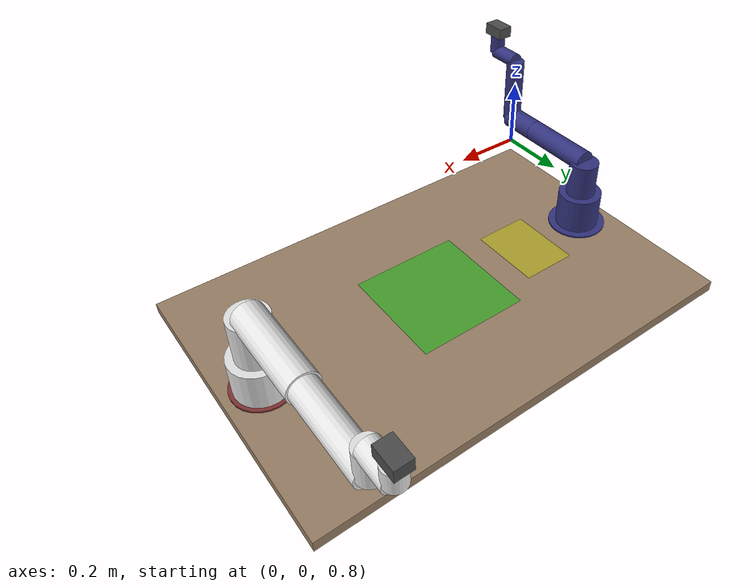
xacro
<?xml version="1.0"?>
<robot xmlns:xacro="http://www.ros.org/wiki/xacro" name="lego_mcp_cell">

  <!-- Arguments -->
  <xacro:arg name="use_sim" default="true"/>
  <xacro:arg name="use_fake_hardware" default="false"/>
  <xacro:arg name="ned2_prefix" default="ned2_"/>
  <xacro:arg name="xarm_prefix" default="xarm_"/>

  <!-- World link -->
  <link name="world"/>

  <!-- Workcell Static Geometry -->

  <!-- Worktable -->
  <link name="worktable">
    <visual>
      <origin xyz="0 0 -0.015" rpy="0 0 0"/>
      <geometry>
        <box size="1.2 0.8 0.03"/>
      </geometry>
      <material name="wood">
        <color rgba="0.6 0.5 0.4 1"/>
      </material>
    </visual>
    <collision>
      <origin xyz="0 0 -0.015" rpy="0 0 0"/>
      <geometry>
        <box size="1.2 0.8 0.03"/>
      </geometry>
    </collision>
  </link>

  <joint name="world_to_worktable" type="fixed">
    <parent link="world"/>
    <child link="worktable"/>
    <origin xyz="0.6 0.4 0.765" rpy="0 0 0"/>
  </joint>

  <!-- Assembly Zone Marker -->
  <link name="assembly_zone">
    <visual>
      <geometry>
        <box size="0.3 0.3 0.002"/>
      </geometry>
      <material name="green_transparent">
        <color rgba="0 0.8 0 0.5"/>
      </material>
    </visual>
  </link>

  <joint name="worktable_to_assembly" type="fixed">
    <parent link="worktable"/>
    <child link="assembly_zone"/>
    <origin xyz="0 0 0.001" rpy="0 0 0"/>
  </joint>

  <!-- Brick Pickup Zone -->
  <link name="pickup_zone">
    <visual>
      <geometry>
        <box size="0.15 0.2 0.002"/>
      </geometry>
      <material name="yellow_transparent">
        <color rgba="0.8 0.8 0 0.5"/>
      </material>
    </visual>
  </link>

  <joint name="worktable_to_pickup" type="fixed">
    <parent link="worktable"/>
    <child link="pickup_zone"/>
    <origin xyz="-0.3 0 0.001" rpy="0 0 0"/>
  </joint>

  <!-- Niryo Ned2 Robot         -->

  <!-- Ned2 base mounting plate -->
  <link name="$(arg ned2_prefix)base_mount">
    <visual>
      <geometry>
        <cylinder radius="0.08" length="0.02"/>
      </geometry>
      <material name="ned2_blue">
        <color rgba="0.2 0.2 0.5 1"/>
      </material>
    </visual>
    <collision>
      <geometry>
        <cylinder radius="0.08" length="0.02"/>
      </geometry>
    </collision>
  </link>

  <joint name="world_to_ned2_mount" type="fixed">
    <parent link="world"/>
    <child link="$(arg ned2_prefix)base_mount"/>
    <origin xyz="0.1 0.4 0.76" rpy="0 0 0"/>
  </joint>

  <!-- Ned2 Base Link (simplified for standalone operation) -->
  <link name="$(arg ned2_prefix)base_link">
    <visual>
      <origin xyz="0 0 0.05" rpy="0 0 0"/>
      <geometry>
        <cylinder radius="0.06" length="0.1"/>
      </geometry>
      <material name="ned2_blue"/>
    </visual>
    <collision>
      <origin xyz="0 0 0.05" rpy="0 0 0"/>
      <geometry>
        <cylinder radius="0.06" length="0.1"/>
      </geometry>
    </collision>
    <inertial>
      <mass value="1.0"/>
      <inertia ixx="0.01" ixy="0" ixz="0" iyy="0.01" iyz="0" izz="0.01"/>
    </inertial>
  </link>

  <joint name="ned2_mount_to_base" type="fixed">
    <parent link="$(arg ned2_prefix)base_mount"/>
    <child link="$(arg ned2_prefix)base_link"/>
    <origin xyz="0 0 0.01" rpy="0 0 0"/>
  </joint>

  <!-- Ned2 simplified arm links -->
  <xacro:macro name="ned2_link" params="name length radius color">
    <link name="${name}">
      <visual>
        <origin xyz="0 0 ${length/2}" rpy="0 0 0"/>
        <geometry>
          <cylinder radius="${radius}" length="${length}"/>
        </geometry>
        <material name="${color}">
          <color rgba="0.2 0.2 0.5 1"/>
        </material>
      </visual>
      <collision>
        <origin xyz="0 0 ${length/2}" rpy="0 0 0"/>
        <geometry>
          <cylinder radius="${radius}" length="${length}"/>
        </geometry>
      </collision>
      <inertial>
        <mass value="0.5"/>
        <inertia ixx="0.005" ixy="0" ixz="0" iyy="0.005" iyz="0" izz="0.002"/>
      </inertial>
    </link>
  </xacro:macro>

  <xacro:ned2_link name="$(arg ned2_prefix)shoulder_link" length="0.10" radius="0.04" color="ned2_blue"/>
  <xacro:ned2_link name="$(arg ned2_prefix)arm_link" length="0.20" radius="0.03" color="ned2_blue"/>
  <xacro:ned2_link name="$(arg ned2_prefix)elbow_link" length="0.10" radius="0.03" color="ned2_blue"/>
  <xacro:ned2_link name="$(arg ned2_prefix)forearm_link" length="0.18" radius="0.025" color="ned2_blue"/>
  <xacro:ned2_link name="$(arg ned2_prefix)wrist_link" length="0.08" radius="0.02" color="ned2_blue"/>
  <xacro:ned2_link name="$(arg ned2_prefix)hand_link" length="0.05" radius="0.02" color="ned2_blue"/>

  <joint name="$(arg ned2_prefix)joint_1" type="revolute">
    <parent link="$(arg ned2_prefix)base_link"/>
    <child link="$(arg ned2_prefix)shoulder_link"/>
    <origin xyz="0 0 0.1" rpy="0 0 0"/>
    <axis xyz="0 0 1"/>
    <limit lower="-2.9" upper="2.9" effort="10" velocity="1.0"/>
  </joint>

  <joint name="$(arg ned2_prefix)joint_2" type="revolute">
    <parent link="$(arg ned2_prefix)shoulder_link"/>
    <child link="$(arg ned2_prefix)arm_link"/>
    <origin xyz="0 0 0.1" rpy="1.5708 0 0"/>
    <axis xyz="0 0 1"/>
    <limit lower="-1.8" upper="0.6" effort="10" velocity="1.0"/>
  </joint>

  <joint name="$(arg ned2_prefix)joint_3" type="revolute">
    <parent link="$(arg ned2_prefix)arm_link"/>
    <child link="$(arg ned2_prefix)elbow_link"/>
    <origin xyz="0 0 0.2" rpy="0 0 0"/>
    <axis xyz="0 0 1"/>
    <limit lower="-1.3" upper="1.6" effort="10" velocity="1.0"/>
  </joint>

  <joint name="$(arg ned2_prefix)joint_4" type="revolute">
    <parent link="$(arg ned2_prefix)elbow_link"/>
    <child link="$(arg ned2_prefix)forearm_link"/>
    <origin xyz="0 0 0.1" rpy="-1.5708 0 0"/>
    <axis xyz="0 0 1"/>
    <limit lower="-2.1" upper="2.1" effort="5" velocity="1.0"/>
  </joint>

  <joint name="$(arg ned2_prefix)joint_5" type="revolute">
    <parent link="$(arg ned2_prefix)forearm_link"/>
    <child link="$(arg ned2_prefix)wrist_link"/>
    <origin xyz="0 0 0.18" rpy="1.5708 0 0"/>
    <axis xyz="0 0 1"/>
    <limit lower="-1.9" upper="1.9" effort="5" velocity="1.0"/>
  </joint>

  <joint name="$(arg ned2_prefix)joint_6" type="revolute">
    <parent link="$(arg ned2_prefix)wrist_link"/>
    <child link="$(arg ned2_prefix)hand_link"/>
    <origin xyz="0 0 0.08" rpy="-1.5708 0 0"/>
    <axis xyz="0 0 1"/>
    <limit lower="-2.5" upper="2.5" effort="5" velocity="1.5"/>
  </joint>

  <!-- Ned2 Tool (end effector frame) -->
  <link name="$(arg ned2_prefix)tool0"/>
  <joint name="$(arg ned2_prefix)hand_to_tool0" type="fixed">
    <parent link="$(arg ned2_prefix)hand_link"/>
    <child link="$(arg ned2_prefix)tool0"/>
    <origin xyz="0 0 0.05" rpy="0 0 0"/>
  </joint>

  <!-- Ned2 Gripper (LEGO gripper) -->
  <link name="$(arg ned2_prefix)gripper">
    <visual>
      <geometry>
        <box size="0.04 0.06 0.03"/>
      </geometry>
      <material name="gripper_gray">
        <color rgba="0.3 0.3 0.3 1"/>
      </material>
    </visual>
    <collision>
      <geometry>
        <box size="0.04 0.06 0.03"/>
      </geometry>
    </collision>
  </link>

  <joint name="$(arg ned2_prefix)tool0_to_gripper" type="fixed">
    <parent link="$(arg ned2_prefix)tool0"/>
    <child link="$(arg ned2_prefix)gripper"/>
    <origin xyz="0 0 0.015" rpy="0 0 0"/>
  </joint>

  <!-- xArm 6 Lite Robot        -->

  <!-- xArm base mounting plate -->
  <link name="$(arg xarm_prefix)base_mount">
    <visual>
      <geometry>
        <cylinder radius="0.08" length="0.02"/>
      </geometry>
      <material name="xarm_red">
        <color rgba="0.5 0.2 0.2 1"/>
      </material>
    </visual>
    <collision>
      <geometry>
        <cylinder radius="0.08" length="0.02"/>
      </geometry>
    </collision>
  </link>

  <joint name="world_to_xarm_mount" type="fixed">
    <parent link="world"/>
    <child link="$(arg xarm_prefix)base_mount"/>
    <origin xyz="1.1 0.4 0.76" rpy="0 0 3.14159"/>
  </joint>

  <!-- xArm Base Link -->
  <link name="$(arg xarm_prefix)base_link">
    <visual>
      <origin xyz="0 0 0.05" rpy="0 0 0"/>
      <geometry>
        <cylinder radius="0.07" length="0.1"/>
      </geometry>
      <material name="xarm_white">
        <color rgba="0.9 0.9 0.9 1"/>
      </material>
    </visual>
    <collision>
      <origin xyz="0 0 0.05" rpy="0 0 0"/>
      <geometry>
        <cylinder radius="0.07" length="0.1"/>
      </geometry>
    </collision>
    <inertial>
      <mass value="1.0"/>
      <inertia ixx="0.01" ixy="0" ixz="0" iyy="0.01" iyz="0" izz="0.01"/>
    </inertial>
  </link>

  <joint name="xarm_mount_to_base" type="fixed">
    <parent link="$(arg xarm_prefix)base_mount"/>
    <child link="$(arg xarm_prefix)base_link"/>
    <origin xyz="0 0 0.01" rpy="0 0 0"/>
  </joint>

  <!-- xArm simplified links -->
  <xacro:macro name="xarm_link" params="name length radius">
    <link name="${name}">
      <visual>
        <origin xyz="0 0 ${length/2}" rpy="0 0 0"/>
        <geometry>
          <cylinder radius="${radius}" length="${length}"/>
        </geometry>
        <material name="xarm_white"/>
      </visual>
      <collision>
        <origin xyz="0 0 ${length/2}" rpy="0 0 0"/>
        <geometry>
          <cylinder radius="${radius}" length="${length}"/>
        </geometry>
      </collision>
      <inertial>
        <mass value="0.5"/>
        <inertia ixx="0.005" ixy="0" ixz="0" iyy="0.005" iyz="0" izz="0.002"/>
      </inertial>
    </link>
  </xacro:macro>

  <xacro:xarm_link name="$(arg xarm_prefix)link1" length="0.12" radius="0.05"/>
  <xacro:xarm_link name="$(arg xarm_prefix)link2" length="0.24" radius="0.04"/>
  <xacro:xarm_link name="$(arg xarm_prefix)link3" length="0.23" radius="0.035"/>
  <xacro:xarm_link name="$(arg xarm_prefix)link4" length="0.08" radius="0.03"/>
  <xacro:xarm_link name="$(arg xarm_prefix)link5" length="0.08" radius="0.028"/>
  <xacro:xarm_link name="$(arg xarm_prefix)link6" length="0.05" radius="0.025"/>

  <joint name="$(arg xarm_prefix)joint1" type="revolute">
    <parent link="$(arg xarm_prefix)base_link"/>
    <child link="$(arg xarm_prefix)link1"/>
    <origin xyz="0 0 0.1" rpy="0 0 0"/>
    <axis xyz="0 0 1"/>
    <limit lower="-6.28" upper="6.28" effort="20" velocity="1.5"/>
  </joint>

  <joint name="$(arg xarm_prefix)joint2" type="revolute">
    <parent link="$(arg xarm_prefix)link1"/>
    <child link="$(arg xarm_prefix)link2"/>
    <origin xyz="0 0 0.12" rpy="1.5708 0 0"/>
    <axis xyz="0 0 1"/>
    <limit lower="-2.0" upper="2.0" effort="20" velocity="1.5"/>
  </joint>

  <joint name="$(arg xarm_prefix)joint3" type="revolute">
    <parent link="$(arg xarm_prefix)link2"/>
    <child link="$(arg xarm_prefix)link3"/>
    <origin xyz="0 0 0.24" rpy="0 0 0"/>
    <axis xyz="0 0 1"/>
    <limit lower="-4.0" upper="0.2" effort="10" velocity="1.5"/>
  </joint>

  <joint name="$(arg xarm_prefix)joint4" type="revolute">
    <parent link="$(arg xarm_prefix)link3"/>
    <child link="$(arg xarm_prefix)link4"/>
    <origin xyz="0 0 0.23" rpy="-1.5708 0 0"/>
    <axis xyz="0 0 1"/>
    <limit lower="-6.28" upper="6.28" effort="10" velocity="1.5"/>
  </joint>

  <joint name="$(arg xarm_prefix)joint5" type="revolute">
    <parent link="$(arg xarm_prefix)link4"/>
    <child link="$(arg xarm_prefix)link5"/>
    <origin xyz="0 0 0.08" rpy="1.5708 0 0"/>
    <axis xyz="0 0 1"/>
    <limit lower="-2.2" upper="2.2" effort="10" velocity="1.5"/>
  </joint>

  <joint name="$(arg xarm_prefix)joint6" type="revolute">
    <parent link="$(arg xarm_prefix)link5"/>
    <child link="$(arg xarm_prefix)link6"/>
    <origin xyz="0 0 0.08" rpy="-1.5708 0 0"/>
    <axis xyz="0 0 1"/>
    <limit lower="-6.28" upper="6.28" effort="10" velocity="1.5"/>
  </joint>

  <!-- xArm Tool (end effector frame) -->
  <link name="$(arg xarm_prefix)tool0"/>
  <joint name="$(arg xarm_prefix)link6_to_tool0" type="fixed">
    <parent link="$(arg xarm_prefix)link6"/>
    <child link="$(arg xarm_prefix)tool0"/>
    <origin xyz="0 0 0.05" rpy="0 0 0"/>
  </joint>

  <!-- xArm Gripper -->
  <link name="$(arg xarm_prefix)gripper">
    <visual>
      <geometry>
        <box size="0.04 0.06 0.03"/>
      </geometry>
      <material name="gripper_gray"/>
    </visual>
    <collision>
      <geometry>
        <box size="0.04 0.06 0.03"/>
      </geometry>
    </collision>
  </link>

  <joint name="$(arg xarm_prefix)tool0_to_gripper" type="fixed">
    <parent link="$(arg xarm_prefix)tool0"/>
    <child link="$(arg xarm_prefix)gripper"/>
    <origin xyz="0 0 0.015" rpy="0 0 0"/>
  </joint>

  <!-- Equipment Collision Geometry -->

  <!-- Formlabs Printer Collision -->
  <link name="formlabs_collision">
    <collision>
      <geometry>
        <box size="0.4 0.4 0.8"/>
      </geometry>
    </collision>
  </link>
  <joint name="world_to_formlabs" type="fixed">
    <parent link="world"/>
    <child link="formlabs_collision"/>
    <origin xyz="-0.4 0.4 0.4" rpy="0 0 0"/>
  </joint>

  <!-- CNC Collision -->
  <link name="cnc_collision">
    <collision>
      <geometry>
        <box size="0.4 0.3 0.4"/>
      </geometry>
    </collision>
  </link>
  <joint name="world_to_cnc" type="fixed">
    <parent link="world"/>
    <child link="cnc_collision"/>
    <origin xyz="0.6 -0.3 0.2" rpy="0 0 0"/>
  </joint>

  <!-- Laser Collision -->
  <link name="laser_collision">
    <collision>
      <geometry>
        <box size="0.35 0.35 0.3"/>
      </geometry>
    </collision>
  </link>
  <joint name="world_to_laser" type="fixed">
    <parent link="world"/>
    <child link="laser_collision"/>
    <origin xyz="0.6 1.1 0.15" rpy="0 0 0"/>
  </joint>

</robot>
